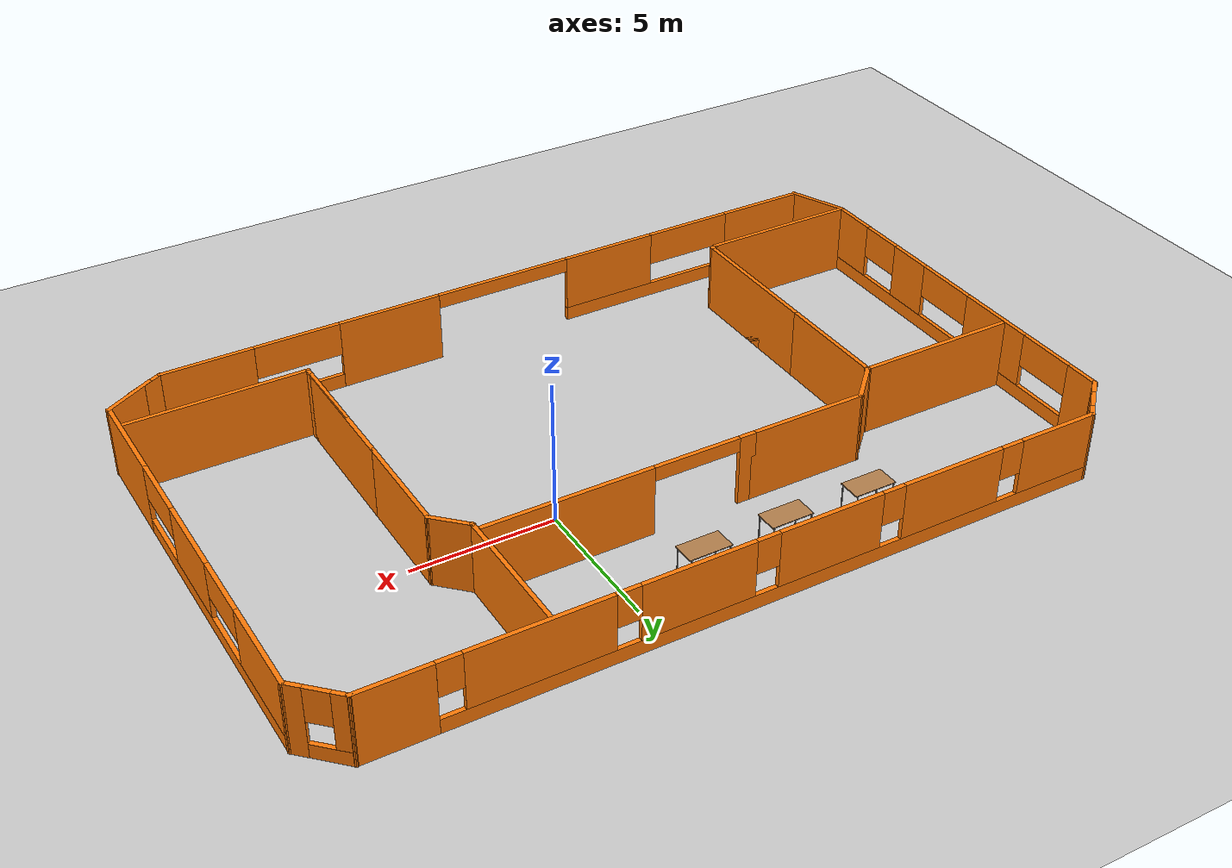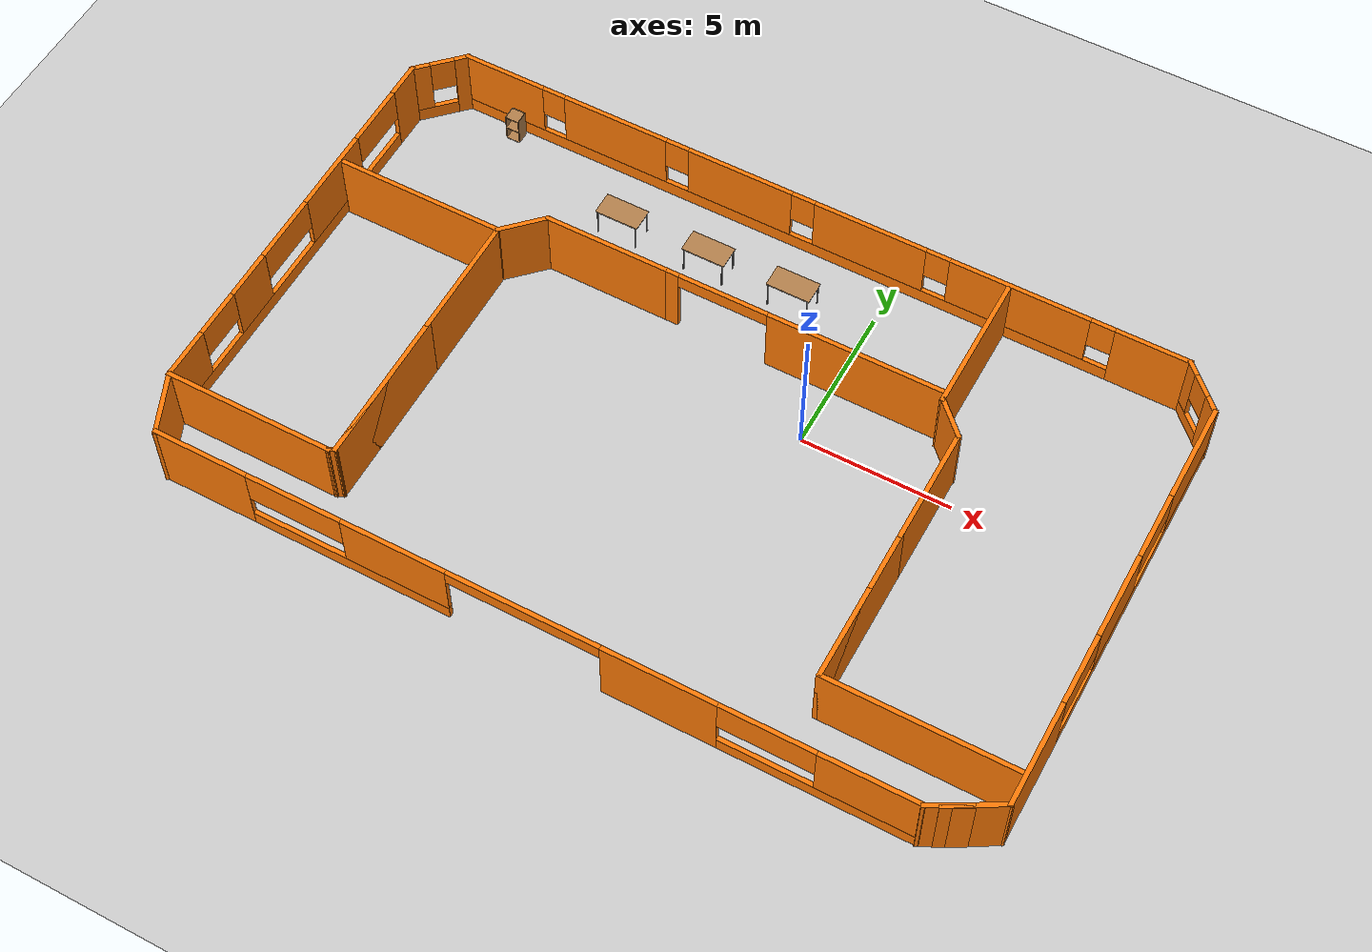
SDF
<sdf version="1.6">
 <world name="default">
  <plugin name="hello" filename="libhello.so"/>
  <plugin name="collision_map_creator" filename="libcollision_map_creator.so"/>
  <light name="sun" type="directional">
   <pose>0 0 10 0 -0 0</pose>
   <diffuse>0.8 0.8 0.8 1</diffuse>
   <specular>0.2 0.2 0.2 1</specular>
   <attenuation>
    <range>1000</range>
    <constant>0.9</constant>
    <linear>0.01</linear>
    <quadratic>0.001</quadratic>
   </attenuation>
   <direction>-0.5 0.1 -0.9</direction>
  </light>
  <model name="ground_plane">
   <static>1</static>
   <link name="link">
    <collision name="collision">
     <geometry><plane><normal>0 0 1</normal><size>100 100</size></plane></geometry>
     <surface><friction><ode><mu>100</mu><mu2>50</mu2></ode></friction></surface>
    </collision>
    <visual name="visual">
     <cast_shadows>0</cast_shadows>
     <geometry><plane><normal>0 0 1</normal><size>100 100</size></plane></geometry>
     <material>
      <script><uri>file://media/materials/scripts/gazebo.material</uri><name>Gazebo/Grey</name></script>
     </material>
    </visual>
   </link>
  </model>
  <gravity>0 0 -9.8</gravity>
  <magnetic_field>6e-06 2.3e-05 -4.2e-05</magnetic_field>
  <atmosphere type="adiabatic"/>
  <physics name="default_physics" default="0" type="ode">
   <max_step_size>0.001</max_step_size>
   <real_time_factor>1</real_time_factor>
   <real_time_update_rate>1000</real_time_update_rate>
  </physics>
  <scene><ambient>0.4 0.4 0.4 1</ambient><background>0.7 0.7 0.7 1</background><shadows>1</shadows></scene>
  <spherical_coordinates>
   <surface_model>EARTH_WGS84</surface_model>
   <latitude_deg>0</latitude_deg>
   <longitude_deg>0</longitude_deg>
   <elevation>0</elevation>
   <heading_deg>0</heading_deg>
  </spherical_coordinates>
  <model name="Shopping">
   <pose>-2.9981 -1.88293 0 0 -0 0</pose>
   <link name="Wall_10">
    <pose>13.2041 7.74753 0 0 -0 2.35619</pose>
    <visual name="Wall_10_Visual_0">
     <pose>-0.684265 0 1.25 0 -0 0</pose>
     <geometry><box><size>0.63147 0.15 2.5</size></box></geometry>
     <material>
      <script><uri>file://media/materials/scripts/gazebo.material</uri><name>Gazebo/Grey</name></script>
      <ambient>0.996078 0.47451 0.0196078 1</ambient>
     </material>
     <meta><layer>0</layer></meta>
    </visual>
    <collision name="Wall_10_Collision_0">
     <geometry><box><size>0.63147 0.15 2.5</size></box></geometry>
     <pose>-0.684265 0 1.25 0 -0 0</pose>
    </collision>
    <visual name="Wall_10_Visual_1">
     <pose>0.315735 0 0.25 0 -0 0</pose>
     <geometry><box><size>1.36853 0.15 0.5</size></box></geometry>
     <material>
      <script><uri>file://media/materials/scripts/gazebo.material</uri><name>Gazebo/Grey</name></script>
      <ambient>0.996078 0.47451 0.0196078 1</ambient>
     </material>
     <meta><layer>0</layer></meta>
    </visual>
    <collision name="Wall_10_Collision_1">
     <geometry><box><size>1.36853 0.15 0.5</size></box></geometry>
     <pose>0.315735 0 0.25 0 -0 0</pose>
    </collision>
    <visual name="Wall_10_Visual_2">
     <pose>0.715735 0 1.5 0 -0 0</pose>
     <geometry><box><size>0.56853 0.15 2</size></box></geometry>
     <material>
      <script><uri>file://media/materials/scripts/gazebo.material</uri><name>Gazebo/Grey</name></script>
      <ambient>0.996078 0.47451 0.0196078 1</ambient>
     </material>
     <meta><layer>0</layer></meta>
    </visual>
    <collision name="Wall_10_Collision_2">
     <geometry><box><size>0.56853 0.15 2</size></box></geometry>
     <pose>0.715735 0 1.5 0 -0 0</pose>
    </collision>
    <visual name="Wall_10_Visual_3">
     <pose>0.03147 0 1.9 0 -0 0</pose>
     <geometry><box><size>0.8 0.15 1.2</size></box></geometry>
     <material>
      <script><uri>file://media/materials/scripts/gazebo.material</uri><name>Gazebo/Grey</name></script>
      <ambient>0.996078 0.47451 0.0196078 1</ambient>
     </material>
     <meta><layer>0</layer></meta>
    </visual>
    <collision name="Wall_10_Collision_3">
     <geometry><box><size>0.8 0.15 1.2</size></box></geometry>
     <pose>0.03147 0 1.9 0 -0 0</pose>
    </collision>
   </link>
   <link name="Wall_11">
    <pose>0 8.4016 0 0 -0 3.14159</pose>
    <visual name="Wall_11_Visual_0">
     <pose>-11.3821 0 1.25 0 -0 0</pose>
     <geometry><box><size>2.48589 0.15 2.5</size></box></geometry>
     <material>
      <script><uri>file://media/materials/scripts/gazebo.material</uri><name>Gazebo/Grey</name></script>
      <ambient>0.996078 0.47451 0.0196078 1</ambient>
     </material>
     <meta><layer>0</layer></meta>
    </visual>
    <collision name="Wall_11_Collision_0">
     <geometry><box><size>2.48589 0.15 2.5</size></box></geometry>
     <pose>-11.3821 0 1.25 0 -0 0</pose>
    </collision>
    <visual name="Wall_11_Visual_1">
     <pose>1.24295 0 0.25 0 -0 0</pose>
     <geometry><box><size>22.7641 0.15 0.5</size></box></geometry>
     <material>
      <script><uri>file://media/materials/scripts/gazebo.material</uri><name>Gazebo/Grey</name></script>
      <ambient>0.996078 0.47451 0.0196078 1</ambient>
     </material>
     <meta><layer>0</layer></meta>
    </visual>
    <collision name="Wall_11_Collision_1">
     <geometry><box><size>22.7641 0.15 0.5</size></box></geometry>
     <pose>1.24295 0 0.25 0 -0 0</pose>
    </collision>
    <visual name="Wall_11_Visual_2">
     <pose>-7.00115 0 1.5 0 -0 0</pose>
     <geometry><box><size>4.67592 0.15 2</size></box></geometry>
     <material>
      <script><uri>file://media/materials/scripts/gazebo.material</uri><name>Gazebo/Grey</name></script>
      <ambient>0.996078 0.47451 0.0196078 1</ambient>
     </material>
     <meta><layer>0</layer></meta>
    </visual>
    <collision name="Wall_11_Collision_2">
     <geometry><box><size>4.67592 0.15 2</size></box></geometry>
     <pose>-7.00115 0 1.5 0 -0 0</pose>
    </collision>
    <visual name="Wall_11_Visual_3">
     <pose>-1.95012 0 1.5 0 -0 0</pose>
     <geometry><box><size>3.82612 0.15 2</size></box></geometry>
     <material>
      <script><uri>file://media/materials/scripts/gazebo.material</uri><name>Gazebo/Grey</name></script>
      <ambient>0.996078 0.47451 0.0196078 1</ambient>
     </material>
     <meta><layer>0</layer></meta>
    </visual>
    <collision name="Wall_11_Collision_3">
     <geometry><box><size>3.82612 0.15 2</size></box></geometry>
     <pose>-1.95012 0 1.5 0 -0 0</pose>
    </collision>
    <visual name="Wall_11_Visual_4">
     <pose>2.59483 0 1.5 0 -0 0</pose>
     <geometry><box><size>3.66378 0.15 2</size></box></geometry>
     <material>
      <script><uri>file://media/materials/scripts/gazebo.material</uri><name>Gazebo/Grey</name></script>
      <ambient>0.996078 0.47451 0.0196078 1</ambient>
     </material>
     <meta><layer>0</layer></meta>
    </visual>
    <collision name="Wall_11_Collision_4">
     <geometry><box><size>3.66378 0.15 2</size></box></geometry>
     <pose>2.59483 0 1.5 0 -0 0</pose>
    </collision>
    <visual name="Wall_11_Visual_5">
     <pose>7.07725 0 1.5 0 -0 0</pose>
     <geometry><box><size>3.70106 0.15 2</size></box></geometry>
     <material>
      <script><uri>file://media/materials/scripts/gazebo.material</uri><name>Gazebo/Grey</name></script>
      <ambient>0.996078 0.47451 0.0196078 1</ambient>
     </material>
     <meta><layer>0</layer></meta>
    </visual>
    <collision name="Wall_11_Collision_5">
     <geometry><box><size>3.70106 0.15 2</size></box></geometry>
     <pose>7.07725 0 1.5 0 -0 0</pose>
    </collision>
    <visual name="Wall_11_Visual_6">
     <pose>11.1764 0 1.5 0 -0 0</pose>
     <geometry><box><size>2.89722 0.15 2</size></box></geometry>
     <material>
      <script><uri>file://media/materials/scripts/gazebo.material</uri><name>Gazebo/Grey</name></script>
      <ambient>0.996078 0.47451 0.0196078 1</ambient>
     </material>
     <meta><layer>0</layer></meta>
    </visual>
    <collision name="Wall_11_Collision_6">
     <geometry><box><size>2.89722 0.15 2</size></box></geometry>
     <pose>11.1764 0 1.5 0 -0 0</pose>
    </collision>
    <visual name="Wall_11_Visual_7">
     <pose>-9.73911 0 1.9 0 -0 0</pose>
     <geometry><box><size>0.8 0.15 1.2</size></box></geometry>
     <material>
      <script><uri>file://media/materials/scripts/gazebo.material</uri><name>Gazebo/Grey</name></script>
      <ambient>0.996078 0.47451 0.0196078 1</ambient>
     </material>
     <meta><layer>0</layer></meta>
    </visual>
    <collision name="Wall_11_Collision_7">
     <geometry><box><size>0.8 0.15 1.2</size></box></geometry>
     <pose>-9.73911 0 1.9 0 -0 0</pose>
    </collision>
    <visual name="Wall_11_Visual_8">
     <pose>-4.26319 0 1.9 0 -0 0</pose>
     <geometry><box><size>0.8 0.15 1.2</size></box></geometry>
     <material>
      <script><uri>file://media/materials/scripts/gazebo.material</uri><name>Gazebo/Grey</name></script>
      <ambient>0.996078 0.47451 0.0196078 1</ambient>
     </material>
     <meta><layer>0</layer></meta>
    </visual>
    <collision name="Wall_11_Collision_8">
     <geometry><box><size>0.8 0.15 1.2</size></box></geometry>
     <pose>-4.26319 0 1.9 0 -0 0</pose>
    </collision>
    <visual name="Wall_11_Visual_9">
     <pose>0.362936 0 1.9 0 -0 0</pose>
     <geometry><box><size>0.8 0.15 1.2</size></box></geometry>
     <material>
      <script><uri>file://media/materials/scripts/gazebo.material</uri><name>Gazebo/Grey</name></script>
      <ambient>0.996078 0.47451 0.0196078 1</ambient>
     </material>
     <meta><layer>0</layer></meta>
    </visual>
    <collision name="Wall_11_Collision_9">
     <geometry><box><size>0.8 0.15 1.2</size></box></geometry>
     <pose>0.362936 0 1.9 0 -0 0</pose>
    </collision>
    <visual name="Wall_11_Visual_10">
     <pose>4.82672 0 1.9 0 -0 0</pose>
     <geometry><box><size>0.8 0.15 1.2</size></box></geometry>
     <material>
      <script><uri>file://media/materials/scripts/gazebo.material</uri><name>Gazebo/Grey</name></script>
      <ambient>0.996078 0.47451 0.0196078 1</ambient>
     </material>
     <meta><layer>0</layer></meta>
    </visual>
    <collision name="Wall_11_Collision_10">
     <geometry><box><size>0.8 0.15 1.2</size></box></geometry>
     <pose>4.82672 0 1.9 0 -0 0</pose>
    </collision>
    <visual name="Wall_11_Visual_11">
     <pose>9.32778 0 1.9 0 -0 0</pose>
     <geometry><box><size>0.8 0.15 1.2</size></box></geometry>
     <material>
      <script><uri>file://media/materials/scripts/gazebo.material</uri><name>Gazebo/Grey</name></script>
      <ambient>0.996078 0.47451 0.0196078 1</ambient>
     </material>
     <meta><layer>0</layer></meta>
    </visual>
    <collision name="Wall_11_Collision_11">
     <geometry><box><size>0.8 0.15 1.2</size></box></geometry>
     <pose>9.32778 0 1.9 0 -0 0</pose>
    </collision>
   </link>
   <link name="Wall_12">
    <pose>-13.2041 7.74753 0 0 0 -2.35619</pose>
    <visual name="Wall_12_Visual_0">
     <pose>-0.72646 0 1.25 0 -0 0</pose>
     <geometry><box><size>0.54708 0.15 2.5</size></box></geometry>
     <material>
      <script><uri>file://media/materials/scripts/gazebo.material</uri><name>Gazebo/Grey</name></script>
      <ambient>0.996078 0.47451 0.0196078 1</ambient>
     </material>
     <meta><layer>0</layer></meta>
    </visual>
    <collision name="Wall_12_Collision_0">
     <geometry><box><size>0.54708 0.15 2.5</size></box></geometry>
     <pose>-0.72646 0 1.25 0 -0 0</pose>
    </collision>
    <visual name="Wall_12_Visual_1">
     <pose>0.27354 0 0.25 0 -0 0</pose>
     <geometry><box><size>1.45292 0.15 0.5</size></box></geometry>
     <material>
      <script><uri>file://media/materials/scripts/gazebo.material</uri><name>Gazebo/Grey</name></script>
      <ambient>0.996078 0.47451 0.0196078 1</ambient>
     </material>
     <meta><layer>0</layer></meta>
    </visual>
    <collision name="Wall_12_Collision_1">
     <geometry><box><size>1.45292 0.15 0.5</size></box></geometry>
     <pose>0.27354 0 0.25 0 -0 0</pose>
    </collision>
    <visual name="Wall_12_Visual_2">
     <pose>0.67354 0 1.5 0 -0 0</pose>
     <geometry><box><size>0.65292 0.15 2</size></box></geometry>
     <material>
      <script><uri>file://media/materials/scripts/gazebo.material</uri><name>Gazebo/Grey</name></script>
      <ambient>0.996078 0.47451 0.0196078 1</ambient>
     </material>
     <meta><layer>0</layer></meta>
    </visual>
    <collision name="Wall_12_Collision_2">
     <geometry><box><size>0.65292 0.15 2</size></box></geometry>
     <pose>0.67354 0 1.5 0 -0 0</pose>
    </collision>
    <visual name="Wall_12_Visual_3">
     <pose>-0.05292 0 1.9 0 -0 0</pose>
     <geometry><box><size>0.8 0.15 1.2</size></box></geometry>
     <material>
      <script><uri>file://media/materials/scripts/gazebo.material</uri><name>Gazebo/Grey</name></script>
      <ambient>0.996078 0.47451 0.0196078 1</ambient>
     </material>
     <meta><layer>0</layer></meta>
    </visual>
    <collision name="Wall_12_Collision_3">
     <geometry><box><size>0.8 0.15 1.2</size></box></geometry>
     <pose>-0.05292 0 1.9 0 -0 0</pose>
    </collision>
   </link>
   <link name="Wall_13">
    <pose>-13.8581 0.293453 0 0 0 -1.5708</pose>
    <visual name="Wall_13_Visual_0">
     <pose>-6.24463 0 1.25 0 -0 0</pose>
     <geometry><box><size>1.26075 0.15 2.5</size></box></geometry>
     <material>
      <script><uri>file://media/materials/scripts/gazebo.material</uri><name>Gazebo/Grey</name></script>
      <ambient>0.996078 0.47451 0.0196078 1</ambient>
     </material>
     <meta><layer>0</layer></meta>
    </visual>
    <collision name="Wall_13_Collision_0">
     <geometry><box><size>1.26075 0.15 2.5</size></box></geometry>
     <pose>-6.24463 0 1.25 0 -0 0</pose>
    </collision>
    <visual name="Wall_13_Visual_1">
     <pose>0.630375 0 0.25 0 -0 0</pose>
     <geometry><box><size>12.4893 0.15 0.5</size></box></geometry>
     <material>
      <script><uri>file://media/materials/scripts/gazebo.material</uri><name>Gazebo/Grey</name></script>
      <ambient>0.996078 0.47451 0.0196078 1</ambient>
     </material>
     <meta><layer>0</layer></meta>
    </visual>
    <collision name="Wall_13_Collision_1">
     <geometry><box><size>12.4893 0.15 0.5</size></box></geometry>
     <pose>0.630375 0 0.25 0 -0 0</pose>
    </collision>
    <visual name="Wall_13_Visual_2">
     <pose>-2.01298 0 1.5 0 -0 0</pose>
     <geometry><box><size>2.92895 0.15 2</size></box></geometry>
     <material>
      <script><uri>file://media/materials/scripts/gazebo.material</uri><name>Gazebo/Grey</name></script>
      <ambient>0.996078 0.47451 0.0196078 1</ambient>
     </material>
     <meta><layer>0</layer></meta>
    </visual>
    <collision name="Wall_13_Collision_2">
     <geometry><box><size>2.92895 0.15 2</size></box></geometry>
     <pose>-2.01298 0 1.5 0 -0 0</pose>
    </collision>
    <visual name="Wall_13_Visual_3">
     <pose>2.63911 0 1.5 0 -0 0</pose>
     <geometry><box><size>1.67951 0.15 2</size></box></geometry>
     <material>
      <script><uri>file://media/materials/scripts/gazebo.material</uri><name>Gazebo/Grey</name></script>
      <ambient>0.996078 0.47451 0.0196078 1</ambient>
     </material>
     <meta><layer>0</layer></meta>
    </visual>
    <collision name="Wall_13_Collision_3">
     <geometry><box><size>1.67951 0.15 2</size></box></geometry>
     <pose>2.63911 0 1.5 0 -0 0</pose>
    </collision>
    <visual name="Wall_13_Visual_4">
     <pose>5.99565 0 1.5 0 -0 0</pose>
     <geometry><box><size>1.7587 0.15 2</size></box></geometry>
     <material>
      <script><uri>file://media/materials/scripts/gazebo.material</uri><name>Gazebo/Grey</name></script>
      <ambient>0.996078 0.47451 0.0196078 1</ambient>
     </material>
     <meta><layer>0</layer></meta>
    </visual>
    <collision name="Wall_13_Collision_4">
     <geometry><box><size>1.7587 0.15 2</size></box></geometry>
     <pose>5.99565 0 1.5 0 -0 0</pose>
    </collision>
    <visual name="Wall_13_Visual_5">
     <pose>-4.54585 0 1.9 0 -0 0</pose>
     <geometry><box><size>2.13679 0.15 1.2</size></box></geometry>
     <material>
      <script><uri>file://media/materials/scripts/gazebo.material</uri><name>Gazebo/Grey</name></script>
      <ambient>0.996078 0.47451 0.0196078 1</ambient>
     </material>
     <meta><layer>0</layer></meta>
    </visual>
    <collision name="Wall_13_Collision_5">
     <geometry><box><size>2.13679 0.15 1.2</size></box></geometry>
     <pose>-4.54585 0 1.9 0 -0 0</pose>
    </collision>
    <visual name="Wall_13_Visual_6">
     <pose>0.625424 0 1.9 0 -0 0</pose>
     <geometry><box><size>2.34787 0.15 1.2</size></box></geometry>
     <material>
      <script><uri>file://media/materials/scripts/gazebo.material</uri><name>Gazebo/Grey</name></script>
      <ambient>0.996078 0.47451 0.0196078 1</ambient>
     </material>
     <meta><layer>0</layer></meta>
    </visual>
    <collision name="Wall_13_Collision_6">
     <geometry><box><size>2.34787 0.15 1.2</size></box></geometry>
     <pose>0.625424 0 1.9 0 -0 0</pose>
    </collision>
    <visual name="Wall_13_Visual_7">
     <pose>4.29758 0 1.9 0 -0 0</pose>
     <geometry><box><size>1.63743 0.15 1.2</size></box></geometry>
     <material>
      <script><uri>file://media/materials/scripts/gazebo.material</uri><name>Gazebo/Grey</name></script>
      <ambient>0.996078 0.47451 0.0196078 1</ambient>
     </material>
     <meta><layer>0</layer></meta>
    </visual>
    <collision name="Wall_13_Collision_7">
     <geometry><box><size>1.63743 0.15 1.2</size></box></geometry>
     <pose>4.29758 0 1.9 0 -0 0</pose>
    </collision>
   </link>
   <link name="Wall_14">
    <collision name="Wall_14_Collision">
     <geometry><box><size>2.22198 0.15 2.5</size></box></geometry>
     <pose>0 0 1.25 0 -0 0</pose>
    </collision>
    <visual name="Wall_14_Visual">
     <pose>0 0 1.25 0 -0 0</pose>
     <geometry><box><size>2.22198 0.15 2.5</size></box></geometry>
     <material>
      <script><uri>file://media/materials/scripts/gazebo.material</uri><name>Gazebo/Grey</name></script>
      <ambient>0.996078 0.47451 0.0196078 1</ambient>
     </material>
     <meta><layer>0</layer></meta>
    </visual>
    <pose>-13.4444 -7.45633 0 0 0 -1.15996</pose>
   </link>
   <link name="Wall_16">
    <pose>-0.605653 -8.38588 0 0 -0 0</pose>
    <visual name="Wall_16_Visual_0">
     <pose>-10.8773 0 1.25 0 -0 0</pose>
     <geometry><box><size>3.24533 0.15 2.5</size></box></geometry>
     <material>
      <script><uri>file://media/materials/scripts/gazebo.material</uri><name>Gazebo/Grey</name></script>
      <ambient>0.996078 0.47451 0.0196078 1</ambient>
     </material>
     <meta><layer>0</layer></meta>
    </visual>
    <collision name="Wall_16_Collision_0">
     <geometry><box><size>3.24533 0.15 2.5</size></box></geometry>
     <pose>-10.8773 0 1.25 0 -0 0</pose>
    </collision>
    <visual name="Wall_16_Visual_1">
     <pose>4.35432 0 1.25 0 -0 0</pose>
     <geometry><box><size>3.69978 0.15 2.5</size></box></geometry>
     <material>
      <script><uri>file://media/materials/scripts/gazebo.material</uri><name>Gazebo/Grey</name></script>
      <ambient>0.996078 0.47451 0.0196078 1</ambient>
     </material>
     <meta><layer>0</layer></meta>
    </visual>
    <collision name="Wall_16_Collision_1">
     <geometry><box><size>3.69978 0.15 2.5</size></box></geometry>
     <pose>4.35432 0 1.25 0 -0 0</pose>
    </collision>
    <visual name="Wall_16_Visual_2">
     <pose>-5.88308 0 0.25 0 -0 0</pose>
     <geometry><box><size>6.74318 0.15 0.5</size></box></geometry>
     <material>
      <script><uri>file://media/materials/scripts/gazebo.material</uri><name>Gazebo/Grey</name></script>
      <ambient>0.996078 0.47451 0.0196078 1</ambient>
     </material>
     <meta><layer>0</layer></meta>
    </visual>
    <collision name="Wall_16_Collision_2">
     <geometry><box><size>6.74318 0.15 0.5</size></box></geometry>
     <pose>-5.88308 0 0.25 0 -0 0</pose>
    </collision>
    <visual name="Wall_16_Visual_3">
     <pose>9.3521 0 0.25 0 -0 0</pose>
     <geometry><box><size>6.29579 0.15 0.5</size></box></geometry>
     <material>
      <script><uri>file://media/materials/scripts/gazebo.material</uri><name>Gazebo/Grey</name></script>
      <ambient>0.996078 0.47451 0.0196078 1</ambient>
     </material>
     <meta><layer>0</layer></meta>
    </visual>
    <collision name="Wall_16_Collision_3">
     <geometry><box><size>6.29579 0.15 0.5</size></box></geometry>
     <pose>9.3521 0 0.25 0 -0 0</pose>
    </collision>
    <visual name="Wall_16_Visual_4">
     <pose>-4.2679 0 1.5 0 -0 0</pose>
     <geometry><box><size>3.51283 0.15 2</size></box></geometry>
     <material>
      <script><uri>file://media/materials/scripts/gazebo.material</uri><name>Gazebo/Grey</name></script>
      <ambient>0.996078 0.47451 0.0196078 1</ambient>
     </material>
     <meta><layer>0</layer></meta>
    </visual>
    <collision name="Wall_16_Collision_4">
     <geometry><box><size>3.51283 0.15 2</size></box></geometry>
     <pose>-4.2679 0 1.5 0 -0 0</pose>
    </collision>
    <visual name="Wall_16_Visual_5">
     <pose>-4.2679 0 1.5 0 -0 0</pose>
     <geometry><box><size>3.51283 0.15 2</size></box></geometry>
     <material>
      <script><uri>file://media/materials/scripts/gazebo.material</uri><name>Gazebo/Grey</name></script>
      <ambient>0.996078 0.47451 0.0196078 1</ambient>
     </material>
     <meta><layer>0</layer></meta>
    </visual>
    <collision name="Wall_16_Collision_5">
     <geometry><box><size>3.51283 0.15 2</size></box></geometry>
     <pose>-4.2679 0 1.5 0 -0 0</pose>
    </collision>
    <visual name="Wall_16_Visual_6">
     <pose>10.875 0 1.5 0 -0 0</pose>
     <geometry><box><size>3.25002 0.15 2</size></box></geometry>
     <material>
      <script><uri>file://media/materials/scripts/gazebo.material</uri><name>Gazebo/Grey</name></script>
      <ambient>0.996078 0.47451 0.0196078 1</ambient>
     </material>
     <meta><layer>0</layer></meta>
    </visual>
    <collision name="Wall_16_Collision_6">
     <geometry><box><size>3.25002 0.15 2</size></box></geometry>
     <pose>10.875 0 1.5 0 -0 0</pose>
    </collision>
    <visual name="Wall_16_Visual_7">
     <pose>-7.6395 0 1.9 0 -0 0</pose>
     <geometry><box><size>3.23035 0.15 1.2</size></box></geometry>
     <material>
      <script><uri>file://media/materials/scripts/gazebo.material</uri><name>Gazebo/Grey</name></script>
      <ambient>0.996078 0.47451 0.0196078 1</ambient>
     </material>
     <meta><layer>0</layer></meta>
    </visual>
    <collision name="Wall_16_Collision_7">
     <geometry><box><size>3.23035 0.15 1.2</size></box></geometry>
     <pose>-7.6395 0 1.9 0 -0 0</pose>
    </collision>
    <visual name="Wall_16_Visual_8">
     <pose>7.72709 0 1.9 0 -0 0</pose>
     <geometry><box><size>3.04577 0.15 1.2</size></box></geometry>
     <material>
      <script><uri>file://media/materials/scripts/gazebo.material</uri><name>Gazebo/Grey</name></script>
      <ambient>0.996078 0.47451 0.0196078 1</ambient>
     </material>
     <meta><layer>0</layer></meta>
    </visual>
    <collision name="Wall_16_Collision_8">
     <geometry><box><size>3.04577 0.15 1.2</size></box></geometry>
     <pose>7.72709 0 1.9 0 -0 0</pose>
    </collision>
    <visual name="Wall_16_Visual_9">
     <pose>-0.003533 0 2.25 0 -0 0</pose>
     <geometry><box><size>5.01591 0.15 0.5</size></box></geometry>
     <material>
      <script><uri>file://media/materials/scripts/gazebo.material</uri><name>Gazebo/Grey</name></script>
      <ambient>0.996078 0.47451 0.0196078 1</ambient>
     </material>
     <meta><layer>0</layer></meta>
    </visual>
    <collision name="Wall_16_Collision_9">
     <geometry><box><size>5.01591 0.15 0.5</size></box></geometry>
     <pose>-0.003533 0 2.25 0 -0 0</pose>
    </collision>
    <visual name="Wall_16_Visual_10">
     <pose>-0.003533 0 2.25 0 -0 0</pose>
     <geometry><box><size>5.01591 0.15 0.5</size></box></geometry>
     <material>
      <script><uri>file://media/materials/scripts/gazebo.material</uri><name>Gazebo/Grey</name></script>
      <ambient>0.996078 0.47451 0.0196078 1</ambient>
     </material>
     <meta><layer>0</layer></meta>
    </visual>
    <collision name="Wall_16_Collision_10">
     <geometry><box><size>5.01591 0.15 0.5</size></box></geometry>
     <pose>-0.003533 0 2.25 0 -0 0</pose>
    </collision>
   </link>
   <link name="Wall_17">
    <collision name="Wall_17_Collision">
     <geometry><box><size>1.48379 0.15 2.5</size></box></geometry>
     <pose>0 0 1.25 0 -0 0</pose>
    </collision>
    <visual name="Wall_17_Visual">
     <pose>0 0 1.25 0 -0 0</pose>
     <geometry><box><size>1.48379 0.15 2.5</size></box></geometry>
     <material>
      <script><uri>file://media/materials/scripts/gazebo.material</uri><name>Gazebo/Grey</name></script>
      <ambient>0.996078 0.47451 0.0196078 1</ambient>
     </material>
     <meta><layer>0</layer></meta>
    </visual>
    <pose>12.4069 -8.09066 0 0 -0 0.492718</pose>
   </link>
   <link name="Wall_20">
    <collision name="Wall_20_Collision">
     <geometry><box><size>1.75 0.15 2.5</size></box></geometry>
     <pose>0 0 1.25 0 -0 0</pose>
    </collision>
    <visual name="Wall_20_Visual">
     <pose>0 0 1.25 0 -0 0</pose>
     <geometry><box><size>1.75 0.15 2.5</size></box></geometry>
     <material>
      <script><uri>file://media/materials/scripts/gazebo.material</uri><name>Gazebo/Grey</name></script>
      <ambient>0.996078 0.47451 0.0196078 1</ambient>
     </material>
     <meta><layer>0</layer></meta>
    </visual>
    <pose>-7.51444 3.35615 0 0 0 -2.35619</pose>
   </link>
   <link name="Wall_24">
    <collision name="Wall_24_Collision">
     <geometry><box><size>5.75 0.15 2.5</size></box></geometry>
     <pose>0 0 1.25 0 -0 0</pose>
    </collision>
    <visual name="Wall_24_Visual">
     <pose>0 0 1.25 0 -0 0</pose>
     <geometry><box><size>5.75 0.15 2.5</size></box></geometry>
     <material>
      <script><uri>file://media/materials/scripts/gazebo.material</uri><name>Gazebo/Grey</name></script>
      <ambient>0.996078 0.47451 0.0196078 1</ambient>
     </material>
     <meta><layer>0</layer></meta>
    </visual>
    <pose>-10.8801 2.79046 0 0 -0 3.14159</pose>
   </link>
   <link name="Wall_26">
    <collision name="Wall_26_Collision">
     <geometry><box><size>4.75 0.15 2.5</size></box></geometry>
     <pose>0 0 1.25 0 -0 0</pose>
    </collision>
    <visual name="Wall_26_Visual">
     <pose>0 0 1.25 0 -0 0</pose>
     <geometry><box><size>4.75 0.15 2.5</size></box></geometry>
     <material>
      <script><uri>file://media/materials/scripts/gazebo.material</uri><name>Gazebo/Grey</name></script>
      <ambient>0.996078 0.47451 0.0196078 1</ambient>
     </material>
     <meta><layer>0</layer></meta>
    </visual>
    <pose>6.65465 5.9644 0 0 0 -1.5708</pose>
   </link>
   <link name="Wall_27">
    <collision name="Wall_27_Collision">
     <geometry><box><size>1.5 0.15 2.5</size></box></geometry>
     <pose>0 0 1.25 0 -0 0</pose>
    </collision>
    <visual name="Wall_27_Visual">
     <pose>0 0 1.25 0 -0 0</pose>
     <geometry><box><size>1.5 0.15 2.5</size></box></geometry>
     <material>
      <script><uri>file://media/materials/scripts/gazebo.material</uri><name>Gazebo/Grey</name></script>
      <ambient>0.996078 0.47451 0.0196078 1</ambient>
     </material>
     <meta><layer>0</layer></meta>
    </visual>
    <pose>7.13195 3.1871 0 0 0 -0.785398</pose>
   </link>
   <link name="Wall_32">
    <collision name="Wall_32_Collision">
     <geometry><box><size>4.25 0.15 2.5</size></box></geometry>
     <pose>0 0 1.25 0 -0 0</pose>
    </collision>
    <visual name="Wall_32_Visual">
     <pose>0 0 1.25 0 -0 0</pose>
     <geometry><box><size>4.25 0.15 2.5</size></box></geometry>
     <material>
      <script><uri>file://media/materials/scripts/gazebo.material</uri><name>Gazebo/Grey</name></script>
      <ambient>0.996078 0.47451 0.0196078 1</ambient>
     </material>
     <meta><layer>0</layer></meta>
    </visual>
    <pose>-8.08012 0.740463 0 0 0 -1.5708</pose>
   </link>
   <link name="Wall_38">
    <collision name="Wall_38_Collision">
     <geometry><box><size>4.25 0.15 2.5</size></box></geometry>
     <pose>0 0 1.25 0 -0 0</pose>
    </collision>
    <visual name="Wall_38_Visual">
     <pose>0 0 1.25 0 -0 0</pose>
     <geometry><box><size>4.25 0.15 2.5</size></box></geometry>
     <material>
      <script><uri>file://media/materials/scripts/gazebo.material</uri><name>Gazebo/Grey</name></script>
      <ambient>0.996078 0.47451 0.0196078 1</ambient>
     </material>
     <meta><layer>0</layer></meta>
    </visual>
    <pose>-4.89875 3.92183 0 0 -0 0</pose>
   </link>
   <link name="Wall_42">
    <pose>1.82625 3.92183 0 0 -0 0</pose>
    <visual name="Wall_42_Visual_0">
     <pose>-4.45686 0 1.25 0 -0 0</pose>
     <geometry><box><size>0.586278 0.15 2.5</size></box></geometry>
     <material>
      <script><uri>file://media/materials/scripts/gazebo.material</uri><name>Gazebo/Grey</name></script>
      <ambient>0.996078 0.47451 0.0196078 1</ambient>
     </material>
     <meta><layer>0</layer></meta>
    </visual>
    <collision name="Wall_42_Collision_0">
     <geometry><box><size>0.586278 0.15 2.5</size></box></geometry>
     <pose>-4.45686 0 1.25 0 -0 0</pose>
    </collision>
    <visual name="Wall_42_Visual_1">
     <pose>1.81609 0 1.25 0 -0 0</pose>
     <geometry><box><size>5.86782 0.15 2.5</size></box></geometry>
     <material>
      <script><uri>file://media/materials/scripts/gazebo.material</uri><name>Gazebo/Grey</name></script>
      <ambient>0.996078 0.47451 0.0196078 1</ambient>
     </material>
     <meta><layer>0</layer></meta>
    </visual>
    <collision name="Wall_42_Collision_1">
     <geometry><box><size>5.86782 0.15 2.5</size></box></geometry>
     <pose>1.81609 0 1.25 0 -0 0</pose>
    </collision>
    <visual name="Wall_42_Visual_2">
     <pose>-2.64077 0 2.25 0 -0 0</pose>
     <geometry><box><size>3.0459 0.15 0.5</size></box></geometry>
     <material>
      <script><uri>file://media/materials/scripts/gazebo.material</uri><name>Gazebo/Grey</name></script>
      <ambient>0.996078 0.47451 0.0196078 1</ambient>
     </material>
     <meta><layer>0</layer></meta>
    </visual>
    <collision name="Wall_42_Collision_2">
     <geometry><box><size>3.0459 0.15 0.5</size></box></geometry>
     <pose>-2.64077 0 2.25 0 -0 0</pose>
    </collision>
   </link>
   <link name="Wall_46">
    <collision name="Wall_46_Collision">
     <geometry><box><size>5.75 0.15 2.5</size></box></geometry>
     <pose>0 0 1.25 0 -0 0</pose>
    </collision>
    <visual name="Wall_46_Visual">
     <pose>0 0 1.25 0 -0 0</pose>
     <geometry><box><size>5.75 0.15 2.5</size></box></geometry>
     <material>
      <script><uri>file://media/materials/scripts/gazebo.material</uri><name>Gazebo/Grey</name></script>
      <ambient>0.996078 0.47451 0.0196078 1</ambient>
     </material>
     <meta><layer>0</layer></meta>
    </visual>
    <pose>-11.0581 -6.50655 0 0 -0 0</pose>
   </link>
   <link name="Wall_50">
    <pose>-8.08012 -3.85954 0 0 0 -1.5708</pose>
    <visual name="Wall_50_Visual_0">
     <pose>0 0 1.25 0 -0 0</pose>
     <geometry><box><size>5.25 0.15 2.5</size></box></geometry>
     <material>
      <script><uri>file://media/materials/scripts/gazebo.material</uri><name>Gazebo/Grey</name></script>
      <ambient>0.996078 0.47451 0.0196078 1</ambient>
     </material>
     <meta><layer>0</layer></meta>
    </visual>
    <collision name="Wall_50_Collision_0">
     <geometry><box><size>5.25 0.15 2.5</size></box></geometry>
     <pose>0 0 1.25 0 -0 0</pose>
    </collision>
    <visual name="Wall_50_Visual_1">
     <pose>0.978568 0 1.25 0 -0 0</pose>
     <geometry><box><size>3.29286 0.15 2.5</size></box></geometry>
     <material>
      <script><uri>file://media/materials/scripts/gazebo.material</uri><name>Gazebo/Grey</name></script>
      <ambient>0.996078 0.47451 0.0196078 1</ambient>
     </material>
     <meta><layer>0</layer></meta>
    </visual>
    <collision name="Wall_50_Collision_1">
     <geometry><box><size>3.29286 0.15 2.5</size></box></geometry>
     <pose>0.978568 0 1.25 0 -0 0</pose>
    </collision>
   </link>
   <link name="Wall_51">
    <collision name="Wall_51_Collision">
     <geometry><box><size>0.352741 0.15 2.5</size></box></geometry>
     <pose>0 0 1.25 0 -0 0</pose>
    </collision>
    <visual name="Wall_51_Visual">
     <pose>0 0 1.25 0 -0 0</pose>
     <geometry><box><size>0.352741 0.15 2.5</size></box></geometry>
     <material>
      <script><uri>file://media/materials/scripts/gazebo.material</uri><name>Gazebo/Grey</name></script>
      <ambient>0.996078 0.47451 0.0196078 1</ambient>
     </material>
     <meta><layer>0</layer></meta>
    </visual>
    <pose>-8.16914 -6.45804 0 0 0 -2.64266</pose>
   </link>
   <link name="Wall_53">
    <collision name="Wall_53_Collision">
     <geometry><box><size>4 0.15 2.5</size></box></geometry>
     <pose>0 0 1.25 0 -0 0</pose>
    </collision>
    <visual name="Wall_53_Visual">
     <pose>0 0 1.25 0 -0 0</pose>
     <geometry><box><size>4 0.15 2.5</size></box></geometry>
     <material>
      <script><uri>file://media/materials/scripts/gazebo.material</uri><name>Gazebo/Grey</name></script>
      <ambient>0.996078 0.47451 0.0196078 1</ambient>
     </material>
     <meta><layer>0</layer></meta>
    </visual>
    <pose>7.60925 0.784807 0 0 0 -1.5708</pose>
   </link>
   <link name="Wall_56">
    <pose>7.60925 -3.69019 0 0 0 -1.5708</pose>
    <visual name="Wall_56_Visual_0">
     <pose>0 0 1.25 0 -0 0</pose>
     <geometry><box><size>5.25 0.15 2.5</size></box></geometry>
     <material>
      <script><uri>file://media/materials/scripts/gazebo.material</uri><name>Gazebo/Grey</name></script>
      <ambient>0.996078 0.47451 0.0196078 1</ambient>
     </material>
     <meta><layer>0</layer></meta>
    </visual>
    <collision name="Wall_56_Collision_0">
     <geometry><box><size>5.25 0.15 2.5</size></box></geometry>
     <pose>0 0 1.25 0 -0 0</pose>
    </collision>
    <visual name="Wall_56_Visual_1">
     <pose>1.02447 0 1.25 0 -0 0</pose>
     <geometry><box><size>3.20105 0.15 2.5</size></box></geometry>
     <material>
      <script><uri>file://media/materials/scripts/gazebo.material</uri><name>Gazebo/Grey</name></script>
      <ambient>0.996078 0.47451 0.0196078 1</ambient>
     </material>
     <meta><layer>0</layer></meta>
    </visual>
    <collision name="Wall_56_Collision_1">
     <geometry><box><size>3.20105 0.15 2.5</size></box></geometry>
     <pose>1.02447 0 1.25 0 -0 0</pose>
    </collision>
   </link>
   <link name="Wall_57">
    <collision name="Wall_57_Collision">
     <geometry><box><size>6.25 0.15 2.5</size></box></geometry>
     <pose>0 0 1.25 0 -0 0</pose>
    </collision>
    <visual name="Wall_57_Visual">
     <pose>0 0 1.25 0 -0 0</pose>
     <geometry><box><size>6.25 0.15 2.5</size></box></geometry>
     <material>
      <script><uri>file://media/materials/scripts/gazebo.material</uri><name>Gazebo/Grey</name></script>
      <ambient>0.996078 0.47451 0.0196078 1</ambient>
     </material>
     <meta><layer>0</layer></meta>
    </visual>
    <pose>10.6592 -6.24019 0 0 -0 0</pose>
   </link>
   <link name="Wall_8">
    <collision name="Wall_8_Collision">
     <geometry><box><size>2 0.15 2.5</size></box></geometry>
     <pose>0 0 1.25 0 -0 0</pose>
    </collision>
    <visual name="Wall_8_Visual">
     <pose>0 0 1.25 0 -0 0</pose>
     <geometry><box><size>2 0.15 2.5</size></box></geometry>
     <material>
      <script><uri>file://media/materials/scripts/gazebo.material</uri><name>Gazebo/Grey</name></script>
      <ambient>0.996078 0.47451 0.0196078 1</ambient>
     </material>
     <meta><layer>0</layer></meta>
    </visual>
    <pose>13.0571 -7.71905 0 0 -0 0.523599</pose>
   </link>
   <link name="Wall_9">
    <pose>13.8581 -0.081547 0 0 -0 1.5708</pose>
    <visual name="Wall_9_Visual_0">
     <pose>-5.48049 0 1.25 0 -0 0</pose>
     <geometry><box><size>3.53902 0.15 2.5</size></box></geometry>
     <material>
      <script><uri>file://media/materials/scripts/gazebo.material</uri><name>Gazebo/Grey</name></script>
      <ambient>0.996078 0.47451 0.0196078 1</ambient>
     </material>
     <meta><layer>0</layer></meta>
    </visual>
    <collision name="Wall_9_Collision_0">
     <geometry><box><size>3.53902 0.15 2.5</size></box></geometry>
     <pose>-5.48049 0 1.25 0 -0 0</pose>
    </collision>
    <visual name="Wall_9_Visual_1">
     <pose>1.76951 0 0.25 0 -0 0</pose>
     <geometry><box><size>10.961 0.15 0.5</size></box></geometry>
     <material>
      <script><uri>file://media/materials/scripts/gazebo.material</uri><name>Gazebo/Grey</name></script>
      <ambient>0.996078 0.47451 0.0196078 1</ambient>
     </material>
     <meta><layer>0</layer></meta>
    </visual>
    <collision name="Wall_9_Collision_1">
     <geometry><box><size>10.961 0.15 0.5</size></box></geometry>
     <pose>1.76951 0 0.25 0 -0 0</pose>
    </collision>
    <visual name="Wall_9_Visual_2">
     <pose>0.127747 0 1.5 0 -0 0</pose>
     <geometry><box><size>2.91136 0.15 2</size></box></geometry>
     <material>
      <script><uri>file://media/materials/scripts/gazebo.material</uri><name>Gazebo/Grey</name></script>
      <ambient>0.996078 0.47451 0.0196078 1</ambient>
     </material>
     <meta><layer>0</layer></meta>
    </visual>
    <collision name="Wall_9_Collision_2">
     <geometry><box><size>2.91136 0.15 2</size></box></geometry>
     <pose>0.127747 0 1.5 0 -0 0</pose>
    </collision>
    <visual name="Wall_9_Visual_3">
     <pose>5.55547 0 1.5 0 -0 0</pose>
     <geometry><box><size>3.38906 0.15 2</size></box></geometry>
     <material>
      <script><uri>file://media/materials/scripts/gazebo.material</uri><name>Gazebo/Grey</name></script>
      <ambient>0.996078 0.47451 0.0196078 1</ambient>
     </material>
     <meta><layer>0</layer></meta>
    </visual>
    <collision name="Wall_9_Collision_3">
     <geometry><box><size>3.38906 0.15 2</size></box></geometry>
     <pose>5.55547 0 1.5 0 -0 0</pose>
    </collision>
    <visual name="Wall_9_Visual_4">
     <pose>-2.51945 0 1.9 0 -0 0</pose>
     <geometry><box><size>2.38304 0.15 1.2</size></box></geometry>
     <material>
      <script><uri>file://media/materials/scripts/gazebo.material</uri><name>Gazebo/Grey</name></script>
      <ambient>0.996078 0.47451 0.0196078 1</ambient>
     </material>
     <meta><layer>0</layer></meta>
    </visual>
    <collision name="Wall_9_Collision_4">
     <geometry><box><size>2.38304 0.15 1.2</size></box></geometry>
     <pose>-2.51945 0 1.9 0 -0 0</pose>
    </collision>
    <visual name="Wall_9_Visual_5">
     <pose>2.72218 0 1.9 0 -0 0</pose>
     <geometry><box><size>2.27751 0.15 1.2</size></box></geometry>
     <material>
      <script><uri>file://media/materials/scripts/gazebo.material</uri><name>Gazebo/Grey</name></script>
      <ambient>0.996078 0.47451 0.0196078 1</ambient>
     </material>
     <meta><layer>0</layer></meta>
    </visual>
    <collision name="Wall_9_Collision_5">
     <geometry><box><size>2.27751 0.15 1.2</size></box></geometry>
     <pose>2.72218 0 1.9 0 -0 0</pose>
    </collision>
   </link>
   <static>1</static>
  </model>
  <model name="table">
   <static>1</static>
   <link name="link">
    <collision name="surface">
     <pose>0 0 1 0 -0 0</pose>
     <geometry><box><size>1.5 0.8 0.03</size></box></geometry>
     <surface><friction><ode><mu>0.6</mu><mu2>0.6</mu2></ode></friction></surface>
    </collision>
    <visual name="visual1">
     <pose>0 0 1 0 -0 0</pose>
     <geometry><box><size>1.5 0.8 0.03</size></box></geometry>
     <material>
      <script><uri>file://media/materials/scripts/gazebo.material</uri><name>Gazebo/Wood</name></script>
     </material>
    </visual>
    <collision name="front_left_leg">
     <pose>0.68 0.38 0.5 0 -0 0</pose>
     <geometry><cylinder><radius>0.02</radius><length>1</length></cylinder></geometry>
    </collision>
    <visual name="front_left_leg">
     <pose>0.68 0.38 0.5 0 -0 0</pose>
     <geometry><cylinder><radius>0.02</radius><length>1</length></cylinder></geometry>
     <material>
      <script><uri>file://media/materials/scripts/gazebo.material</uri><name>Gazebo/Grey</name></script>
     </material>
    </visual>
    <collision name="front_right_leg">
     <pose>0.68 -0.38 0.5 0 -0 0</pose>
     <geometry><cylinder><radius>0.02</radius><length>1</length></cylinder></geometry>
    </collision>
    <visual name="front_right_leg">
     <pose>0.68 -0.38 0.5 0 -0 0</pose>
     <geometry><cylinder><radius>0.02</radius><length>1</length></cylinder></geometry>
     <material>
      <script><uri>file://media/materials/scripts/gazebo.material</uri><name>Gazebo/Grey</name></script>
     </material>
    </visual>
    <collision name="back_right_leg">
     <pose>-0.68 -0.38 0.5 0 -0 0</pose>
     <geometry><cylinder><radius>0.02</radius><length>1</length></cylinder></geometry>
    </collision>
    <visual name="back_right_leg">
     <pose>-0.68 -0.38 0.5 0 -0 0</pose>
     <geometry><cylinder><radius>0.02</radius><length>1</length></cylinder></geometry>
     <material>
      <script><uri>file://media/materials/scripts/gazebo.material</uri><name>Gazebo/Grey</name></script>
     </material>
    </visual>
    <collision name="back_left_leg">
     <pose>-0.68 0.38 0.5 0 -0 0</pose>
     <geometry><cylinder><radius>0.02</radius><length>1</length></cylinder></geometry>
    </collision>
    <visual name="back_left_leg">
     <pose>-0.68 0.38 0.5 0 -0 0</pose>
     <geometry><cylinder><radius>0.02</radius><length>1</length></cylinder></geometry>
     <material>
      <script><uri>file://media/materials/scripts/gazebo.material</uri><name>Gazebo/Grey</name></script>
     </material>
    </visual>
   </link>
   <pose>-8.65415 4.35786 0 0 -0 0</pose>
  </model>
  <model name="table_0">
   <static>1</static>
   <link name="link">
    <collision name="surface">
     <pose>0 0 1 0 -0 0</pose>
     <geometry><box><size>1.5 0.8 0.03</size></box></geometry>
     <surface><friction><ode><mu>0.6</mu><mu2>0.6</mu2></ode></friction></surface>
    </collision>
    <visual name="visual1">
     <pose>0 0 1 0 -0 0</pose>
     <geometry><box><size>1.5 0.8 0.03</size></box></geometry>
     <material>
      <script><uri>file://media/materials/scripts/gazebo.material</uri><name>Gazebo/Wood</name></script>
     </material>
    </visual>
    <collision name="front_left_leg">
     <pose>0.68 0.38 0.5 0 -0 0</pose>
     <geometry><cylinder><radius>0.02</radius><length>1</length></cylinder></geometry>
    </collision>
    <visual name="front_left_leg">
     <pose>0.68 0.38 0.5 0 -0 0</pose>
     <geometry><cylinder><radius>0.02</radius><length>1</length></cylinder></geometry>
     <material>
      <script><uri>file://media/materials/scripts/gazebo.material</uri><name>Gazebo/Grey</name></script>
     </material>
    </visual>
    <collision name="front_right_leg">
     <pose>0.68 -0.38 0.5 0 -0 0</pose>
     <geometry><cylinder><radius>0.02</radius><length>1</length></cylinder></geometry>
    </collision>
    <visual name="front_right_leg">
     <pose>0.68 -0.38 0.5 0 -0 0</pose>
     <geometry><cylinder><radius>0.02</radius><length>1</length></cylinder></geometry>
     <material>
      <script><uri>file://media/materials/scripts/gazebo.material</uri><name>Gazebo/Grey</name></script>
     </material>
    </visual>
    <collision name="back_right_leg">
     <pose>-0.68 -0.38 0.5 0 -0 0</pose>
     <geometry><cylinder><radius>0.02</radius><length>1</length></cylinder></geometry>
    </collision>
    <visual name="back_right_leg">
     <pose>-0.68 -0.38 0.5 0 -0 0</pose>
     <geometry><cylinder><radius>0.02</radius><length>1</length></cylinder></geometry>
     <material>
      <script><uri>file://media/materials/scripts/gazebo.material</uri><name>Gazebo/Grey</name></script>
     </material>
    </visual>
    <collision name="back_left_leg">
     <pose>-0.68 0.38 0.5 0 -0 0</pose>
     <geometry><cylinder><radius>0.02</radius><length>1</length></cylinder></geometry>
    </collision>
    <visual name="back_left_leg">
     <pose>-0.68 0.38 0.5 0 -0 0</pose>
     <geometry><cylinder><radius>0.02</radius><length>1</length></cylinder></geometry>
     <material>
      <script><uri>file://media/materials/scripts/gazebo.material</uri><name>Gazebo/Grey</name></script>
     </material>
    </visual>
   </link>
   <pose>-5.55249 4.36177 0 0 -0 0</pose>
  </model>
  <model name="table_1">
   <static>1</static>
   <link name="link">
    <collision name="surface">
     <pose>0 0 1 0 -0 0</pose>
     <geometry><box><size>1.5 0.8 0.03</size></box></geometry>
     <surface><friction><ode><mu>0.6</mu><mu2>0.6</mu2></ode></friction></surface>
    </collision>
    <visual name="visual1">
     <pose>0 0 1 0 -0 0</pose>
     <geometry><box><size>1.5 0.8 0.03</size></box></geometry>
     <material>
      <script><uri>file://media/materials/scripts/gazebo.material</uri><name>Gazebo/Wood</name></script>
     </material>
    </visual>
    <collision name="front_left_leg">
     <pose>0.68 0.38 0.5 0 -0 0</pose>
     <geometry><cylinder><radius>0.02</radius><length>1</length></cylinder></geometry>
    </collision>
    <visual name="front_left_leg">
     <pose>0.68 0.38 0.5 0 -0 0</pose>
     <geometry><cylinder><radius>0.02</radius><length>1</length></cylinder></geometry>
     <material>
      <script><uri>file://media/materials/scripts/gazebo.material</uri><name>Gazebo/Grey</name></script>
     </material>
    </visual>
    <collision name="front_right_leg">
     <pose>0.68 -0.38 0.5 0 -0 0</pose>
     <geometry><cylinder><radius>0.02</radius><length>1</length></cylinder></geometry>
    </collision>
    <visual name="front_right_leg">
     <pose>0.68 -0.38 0.5 0 -0 0</pose>
     <geometry><cylinder><radius>0.02</radius><length>1</length></cylinder></geometry>
     <material>
      <script><uri>file://media/materials/scripts/gazebo.material</uri><name>Gazebo/Grey</name></script>
     </material>
    </visual>
    <collision name="back_right_leg">
     <pose>-0.68 -0.38 0.5 0 -0 0</pose>
     <geometry><cylinder><radius>0.02</radius><length>1</length></cylinder></geometry>
    </collision>
    <visual name="back_right_leg">
     <pose>-0.68 -0.38 0.5 0 -0 0</pose>
     <geometry><cylinder><radius>0.02</radius><length>1</length></cylinder></geometry>
     <material>
      <script><uri>file://media/materials/scripts/gazebo.material</uri><name>Gazebo/Grey</name></script>
     </material>
    </visual>
    <collision name="back_left_leg">
     <pose>-0.68 0.38 0.5 0 -0 0</pose>
     <geometry><cylinder><radius>0.02</radius><length>1</length></cylinder></geometry>
    </collision>
    <visual name="back_left_leg">
     <pose>-0.68 0.38 0.5 0 -0 0</pose>
     <geometry><cylinder><radius>0.02</radius><length>1</length></cylinder></geometry>
     <material>
      <script><uri>file://media/materials/scripts/gazebo.material</uri><name>Gazebo/Grey</name></script>
     </material>
    </visual>
   </link>
   <pose>-2.59066 4.4153 0 0 -0 0</pose>
  </model>
  <model name="cabinet">
   <static>1</static>
   <link name="cabinet_bottom_plate">
    <inertial>
     <pose>0 0 -1 0 -0 0</pose>
     <inertia><ixx>2.05</ixx><ixy>0</ixy><ixz>0</ixz><iyy>2.05</iyy><iyz>0</iyz><izz>2.05</izz></inertia>
     <mass>25</mass>
    </inertial>
    <collision name="cabinet_bottom_plate_geom">
     <pose>0 0 0.01 0 -0 0</pose>
     <geometry><box><size>0.45 0.45 0.02</size></box></geometry>
    </collision>
    <visual name="cabinet_bottom_plate_geom_visual">
     <pose>0 0 0.01 0 -0 0</pose>
     <geometry><box><size>0.45 0.45 0.02</size></box></geometry>
     <material>
      <script><uri>file://media/materials/scripts/gazebo.material</uri><name>Gazebo/Wood</name></script>
     </material>
    </visual>
    <collision name="cabinet_bottom_plate_geom_cabinet_back_plate">
     <pose>0.235 0 0.51 0 -0 0</pose>
     <geometry><box><size>0.02 0.45 1.02</size></box></geometry>
    </collision>
    <visual name="cabinet_bottom_plate_geom_cabinet_back_plate_visual">
     <pose>0.235 0 0.51 0 -0 0</pose>
     <geometry><box><size>0.02 0.45 1.02</size></box></geometry>
     <material>
      <script><uri>file://media/materials/scripts/gazebo.material</uri><name>Gazebo/Wood</name></script>
     </material>
    </visual>
    <collision name="cabinet_bottom_plate_geom_cabinet_left_plate">
     <pose>0 0.235 0.51 0 -0 0</pose>
     <geometry><box><size>0.45 0.02 1.02</size></box></geometry>
    </collision>
    <visual name="cabinet_bottom_plate_geom_cabinet_left_plate_visual">
     <pose>0 0.235 0.51 0 -0 0</pose>
     <geometry><box><size>0.45 0.02 1.02</size></box></geometry>
     <material>
      <script><uri>file://media/materials/scripts/gazebo.material</uri><name>Gazebo/Wood</name></script>
     </material>
    </visual>
    <collision name="cabinet_bottom_plate_geom_cabinet_middle_plate">
     <pose>0 0 0.51 0 -0 0</pose>
     <geometry><box><size>0.45 0.45 0.02</size></box></geometry>
    </collision>
    <visual name="cabinet_bottom_plate_geom_cabinet_middle_plate_visual">
     <pose>0 0 0.51 0 -0 0</pose>
     <geometry><box><size>0.45 0.45 0.02</size></box></geometry>
     <material>
      <script><uri>file://media/materials/scripts/gazebo.material</uri><name>Gazebo/Wood</name></script>
     </material>
    </visual>
    <collision name="cabinet_bottom_plate_geom_cabinet_right_plate">
     <pose>0 -0.235 0.51 0 -0 0</pose>
     <geometry><box><size>0.45 0.02 1.02</size></box></geometry>
    </collision>
    <visual name="cabinet_bottom_plate_geom_cabinet_right_plate_visual">
     <pose>0 -0.235 0.51 0 -0 0</pose>
     <geometry><box><size>0.45 0.02 1.02</size></box></geometry>
     <material>
      <script><uri>file://media/materials/scripts/gazebo.material</uri><name>Gazebo/Wood</name></script>
     </material>
    </visual>
    <collision name="cabinet_bottom_plate_geom_cabinet_top_plate">
     <pose>0 0 1.01 0 -0 0</pose>
     <geometry><box><size>0.45 0.45 0.02</size></box></geometry>
    </collision>
    <visual name="cabinet_bottom_plate_geom_cabinet_top_plate_visual">
     <pose>0 0 1.01 0 -0 0</pose>
     <geometry><box><size>0.45 0.45 0.02</size></box></geometry>
     <material>
      <script><uri>file://media/materials/scripts/gazebo.material</uri><name>Gazebo/Wood</name></script>
     </material>
    </visual>
   </link>
   <pose>-13.6497 6.14221 0 0 -0 1.58024</pose>
  </model>
 </world>
</sdf>
